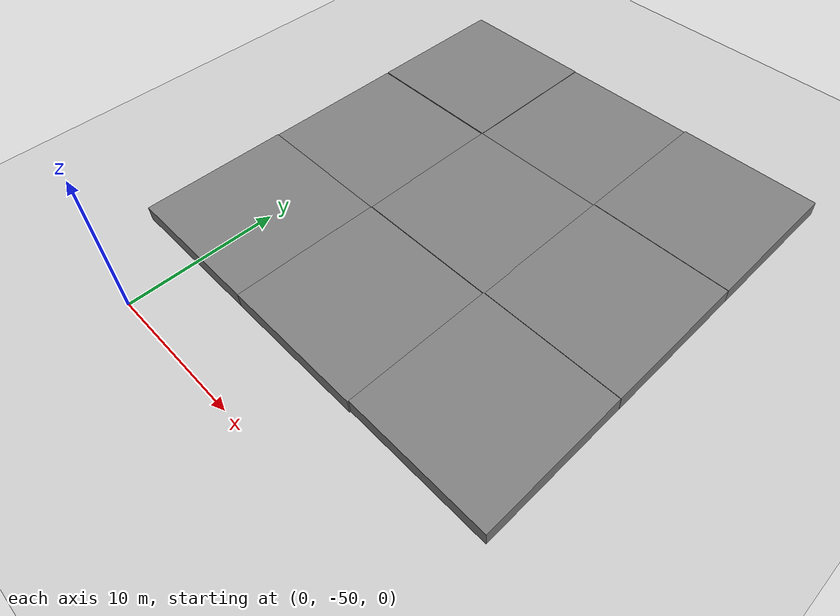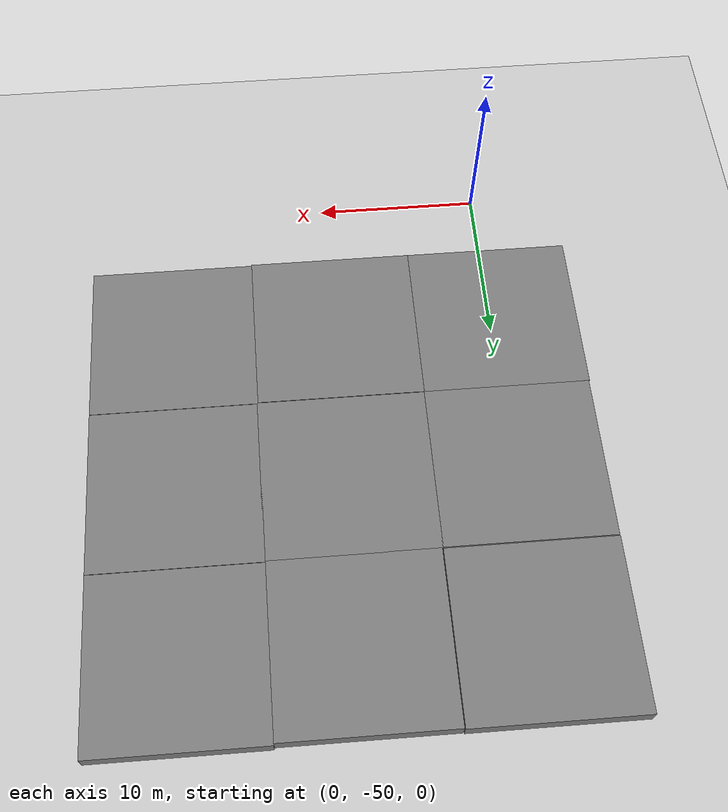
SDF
<sdf version="1.7">
 <world name="default">
  <model name="ground_plane">
   <static>1</static>
   <link name="link">
    <collision name="collision">
     <geometry><plane><normal>0 0 1</normal><size>100 100</size></plane></geometry>
     <surface>
      <contact><collide_bitmask>65535</collide_bitmask></contact>
      <friction><ode><mu>100</mu><mu2>50</mu2></ode></friction>
     </surface>
    </collision>
    <visual name="visual">
     <cast_shadows>0</cast_shadows>
     <geometry><plane><normal>0 0 1</normal><size>100 100</size></plane></geometry>
     <material>
      <script><uri>file://media/materials/scripts/gazebo.material</uri><name>Gazebo/Grey</name></script>
     </material>
    </visual>
   </link>
  </model>
  <model name="farm_clone_0">
   <link name="link">
    <inertial>
     <mass>1</mass>
     <inertia><ixx>1</ixx><ixy>0</ixy><ixz>0</ixz><iyy>1</iyy><iyz>0</iyz><izz>1</izz></inertia>
    </inertial>
    <visual name="visual_1">
     <pose>2 2.5 0 0 -0 0</pose>
     <cast_shadows>0</cast_shadows>
     <geometry><box><size>10 10 2</size></box></geometry>
     <material>
      <script>
       <uri>model://mud_box/materials/scripts</uri>
       <uri>model://mud_box/materials/textures</uri>
       <name>vrc/mud</name>
      </script>
      <shader type="pixel"><normal_map>__default__</normal_map></shader>
      <ambient>0.5 0.5 0.5 1</ambient>
      <diffuse>0.5 0.5 0.5 1</diffuse>
      <specular>0.2 0.2 0.2 1</specular>
      <emissive>0 0 0 1</emissive>
     </material>
    </visual>
    <visual name="visual_2">
     <pose>2 2.5 0 0 -0 0</pose>
     <cast_shadows>0</cast_shadows>
     <geometry><box><size>10 10 2</size></box></geometry>
     <material>
      <script>
       <uri>model://mud_box/materials/scripts</uri>
       <uri>model://mud_box/materials/textures</uri>
       <name>vrc/mud</name>
      </script>
      <shader type="pixel"><normal_map>__default__</normal_map></shader>
      <ambient>0.5 0.5 0.5 1</ambient>
      <diffuse>0.5 0.5 0.5 1</diffuse>
      <specular>0.2 0.2 0.2 1</specular>
      <emissive>0 0 0 1</emissive>
     </material>
    </visual>
    <visual name="visual_4">
     <pose>2 2.5 0 0 -0 0</pose>
     <cast_shadows>0</cast_shadows>
     <geometry><box><size>10 10 2</size></box></geometry>
     <material>
      <script>
       <uri>model://mud_box/materials/scripts</uri>
       <uri>model://mud_box/materials/textures</uri>
       <name>vrc/mud</name>
      </script>
      <shader type="pixel"><normal_map>__default__</normal_map></shader>
      <ambient>0.5 0.5 0.5 1</ambient>
      <diffuse>0.5 0.5 0.5 1</diffuse>
      <specular>0.2 0.2 0.2 1</specular>
      <emissive>0 0 0 1</emissive>
     </material>
    </visual>
    <visual name="visual_3">
     <pose>2 2.5 0 0 -0 0</pose>
     <cast_shadows>0</cast_shadows>
     <geometry><box><size>10 10 2</size></box></geometry>
     <material>
      <script>
       <uri>model://mud_box/materials/scripts</uri>
       <uri>model://mud_box/materials/textures</uri>
       <name>vrc/mud</name>
      </script>
      <shader type="pixel"><normal_map>__default__</normal_map></shader>
      <ambient>0.5 0.5 0.5 1</ambient>
      <diffuse>0.5 0.5 0.5 1</diffuse>
      <specular>0.2 0.2 0.2 1</specular>
      <emissive>0 0 0 1</emissive>
     </material>
    </visual>
    <collision name="collision">
     <laser_retro>0.3</laser_retro>
     <pose>2 2.5 0 0 -0 0</pose>
     <geometry><box><size>100 100 2</size></box></geometry>
     <surface>
      <friction>
       <ode><mu>1.2</mu><mu2>1.2</mu2><fdir1>0 0 0</fdir1><slip1>0.01</slip1><slip2>0.01</slip2></ode>
       <torsional>
        <coefficient>0.05</coefficient>
        <patch_radius>0.08</patch_radius>
        <surface_radius>0.05</surface_radius>
        <use_patch_radius>1</use_patch_radius>
        <ode><slip>0</slip></ode>
       </torsional>
      </friction>
      <bounce><restitution_coefficient>0</restitution_coefficient><threshold>1</threshold></bounce>
      <contact>
       <collide_without_contact>0</collide_without_contact>
       <collide_without_contact_bitmask>1</collide_without_contact_bitmask>
       <collide_bitmask>1</collide_bitmask>
       <ode>
        <soft_cfm>0</soft_cfm>
        <soft_erp>1</soft_erp>
        <kp>1e+07</kp>
        <kd>5000</kd>
        <max_vel>0.001</max_vel>
        <min_depth>0.0005</min_depth>
       </ode>
       <bullet>
        <split_impulse>1</split_impulse>
        <split_impulse_penetration_threshold>-0.01</split_impulse_penetration_threshold>
        <soft_cfm>0</soft_cfm>
        <soft_erp>1</soft_erp>
        <kp>1e+07</kp>
        <kd>5000</kd>
       </bullet>
      </contact>
     </surface>
    </collision>
   </link>
   <static>1</static>
   <pose>-2.22199 -22.8913 0 0 -0 0</pose>
  </model>
  <model name="farm_clone_0_clone_1_clone_1_clone_1">
   <link name="link">
    <inertial>
     <mass>1</mass>
     <inertia><ixx>1</ixx><ixy>0</ixy><ixz>0</ixz><iyy>1</iyy><iyz>0</iyz><izz>1</izz></inertia>
    </inertial>
    <visual name="visual_1">
     <pose>2 2.5 0 0 -0 0</pose>
     <cast_shadows>0</cast_shadows>
     <geometry><box><size>10 10 2</size></box></geometry>
     <material>
      <script>
       <uri>model://mud_box/materials/scripts</uri>
       <uri>model://mud_box/materials/textures</uri>
       <name>vrc/mud</name>
      </script>
      <shader type="pixel"><normal_map>__default__</normal_map></shader>
      <ambient>0.5 0.5 0.5 1</ambient>
      <diffuse>0.5 0.5 0.5 1</diffuse>
      <specular>0.2 0.2 0.2 1</specular>
      <emissive>0 0 0 1</emissive>
     </material>
    </visual>
    <visual name="visual_2">
     <pose>2 2.5 0 0 -0 0</pose>
     <cast_shadows>0</cast_shadows>
     <geometry><box><size>10 10 2</size></box></geometry>
     <material>
      <script>
       <uri>model://mud_box/materials/scripts</uri>
       <uri>model://mud_box/materials/textures</uri>
       <name>vrc/mud</name>
      </script>
      <shader type="pixel"><normal_map>__default__</normal_map></shader>
      <ambient>0.5 0.5 0.5 1</ambient>
      <diffuse>0.5 0.5 0.5 1</diffuse>
      <specular>0.2 0.2 0.2 1</specular>
      <emissive>0 0 0 1</emissive>
     </material>
    </visual>
    <visual name="visual_4">
     <pose>2 2.5 0 0 -0 0</pose>
     <cast_shadows>0</cast_shadows>
     <geometry><box><size>10 10 2</size></box></geometry>
     <material>
      <script>
       <uri>model://mud_box/materials/scripts</uri>
       <uri>model://mud_box/materials/textures</uri>
       <name>vrc/mud</name>
      </script>
      <shader type="pixel"><normal_map>__default__</normal_map></shader>
      <ambient>0.5 0.5 0.5 1</ambient>
      <diffuse>0.5 0.5 0.5 1</diffuse>
      <specular>0.2 0.2 0.2 1</specular>
      <emissive>0 0 0 1</emissive>
     </material>
    </visual>
    <visual name="visual_3">
     <pose>2 2.5 0 0 -0 0</pose>
     <cast_shadows>0</cast_shadows>
     <geometry><box><size>10 10 2</size></box></geometry>
     <material>
      <script>
       <uri>model://mud_box/materials/scripts</uri>
       <uri>model://mud_box/materials/textures</uri>
       <name>vrc/mud</name>
      </script>
      <shader type="pixel"><normal_map>__default__</normal_map></shader>
      <ambient>0.5 0.5 0.5 1</ambient>
      <diffuse>0.5 0.5 0.5 1</diffuse>
      <specular>0.2 0.2 0.2 1</specular>
      <emissive>0 0 0 1</emissive>
     </material>
    </visual>
    <collision name="collision">
     <laser_retro>0.3</laser_retro>
     <pose>2 2.5 0 0 -0 0</pose>
     <geometry><box><size>100 100 2</size></box></geometry>
     <surface>
      <friction>
       <ode><mu>1.2</mu><mu2>1.2</mu2><fdir1>0 0 0</fdir1><slip1>0.01</slip1><slip2>0.01</slip2></ode>
       <torsional>
        <coefficient>0.05</coefficient>
        <patch_radius>0.08</patch_radius>
        <surface_radius>0.05</surface_radius>
        <use_patch_radius>1</use_patch_radius>
        <ode><slip>0</slip></ode>
       </torsional>
      </friction>
      <bounce><restitution_coefficient>0</restitution_coefficient><threshold>1</threshold></bounce>
      <contact>
       <collide_without_contact>0</collide_without_contact>
       <collide_without_contact_bitmask>1</collide_without_contact_bitmask>
       <collide_bitmask>1</collide_bitmask>
       <ode>
        <soft_cfm>0</soft_cfm>
        <soft_erp>1</soft_erp>
        <kp>1e+07</kp>
        <kd>5000</kd>
        <max_vel>0.001</max_vel>
        <min_depth>0.0005</min_depth>
       </ode>
       <bullet>
        <split_impulse>1</split_impulse>
        <split_impulse_penetration_threshold>-0.01</split_impulse_penetration_threshold>
        <soft_cfm>0</soft_cfm>
        <soft_erp>1</soft_erp>
        <kp>1e+07</kp>
        <kd>5000</kd>
       </bullet>
      </contact>
     </surface>
    </collision>
   </link>
   <static>1</static>
   <pose>7.82078 -22.93 0 0 -0 0</pose>
  </model>
  <model name="farm_clone_0_clone_1_clone_1_clone_2">
   <link name="link">
    <inertial>
     <mass>1</mass>
     <inertia><ixx>1</ixx><ixy>0</ixy><ixz>0</ixz><iyy>1</iyy><iyz>0</iyz><izz>1</izz></inertia>
    </inertial>
    <visual name="visual_1">
     <pose>2 2.5 0 0 -0 0</pose>
     <cast_shadows>0</cast_shadows>
     <geometry><box><size>10 10 2</size></box></geometry>
     <material>
      <script>
       <uri>model://mud_box/materials/scripts</uri>
       <uri>model://mud_box/materials/textures</uri>
       <name>vrc/mud</name>
      </script>
      <shader type="pixel"><normal_map>__default__</normal_map></shader>
      <ambient>0.5 0.5 0.5 1</ambient>
      <diffuse>0.5 0.5 0.5 1</diffuse>
      <specular>0.2 0.2 0.2 1</specular>
      <emissive>0 0 0 1</emissive>
     </material>
    </visual>
    <visual name="visual_2">
     <pose>2 2.5 0 0 -0 0</pose>
     <cast_shadows>0</cast_shadows>
     <geometry><box><size>10 10 2</size></box></geometry>
     <material>
      <script>
       <uri>model://mud_box/materials/scripts</uri>
       <uri>model://mud_box/materials/textures</uri>
       <name>vrc/mud</name>
      </script>
      <shader type="pixel"><normal_map>__default__</normal_map></shader>
      <ambient>0.5 0.5 0.5 1</ambient>
      <diffuse>0.5 0.5 0.5 1</diffuse>
      <specular>0.2 0.2 0.2 1</specular>
      <emissive>0 0 0 1</emissive>
     </material>
    </visual>
    <visual name="visual_4">
     <pose>2 2.5 0 0 -0 0</pose>
     <cast_shadows>0</cast_shadows>
     <geometry><box><size>10 10 2</size></box></geometry>
     <material>
      <script>
       <uri>model://mud_box/materials/scripts</uri>
       <uri>model://mud_box/materials/textures</uri>
       <name>vrc/mud</name>
      </script>
      <shader type="pixel"><normal_map>__default__</normal_map></shader>
      <ambient>0.5 0.5 0.5 1</ambient>
      <diffuse>0.5 0.5 0.5 1</diffuse>
      <specular>0.2 0.2 0.2 1</specular>
      <emissive>0 0 0 1</emissive>
     </material>
    </visual>
    <visual name="visual_3">
     <pose>2 2.5 0 0 -0 0</pose>
     <cast_shadows>0</cast_shadows>
     <geometry><box><size>10 10 2</size></box></geometry>
     <material>
      <script>
       <uri>model://mud_box/materials/scripts</uri>
       <uri>model://mud_box/materials/textures</uri>
       <name>vrc/mud</name>
      </script>
      <shader type="pixel"><normal_map>__default__</normal_map></shader>
      <ambient>0.5 0.5 0.5 1</ambient>
      <diffuse>0.5 0.5 0.5 1</diffuse>
      <specular>0.2 0.2 0.2 1</specular>
      <emissive>0 0 0 1</emissive>
     </material>
    </visual>
    <collision name="collision">
     <laser_retro>0.3</laser_retro>
     <pose>2 2.5 0 0 -0 0</pose>
     <geometry><box><size>100 100 2</size></box></geometry>
     <surface>
      <friction>
       <ode><mu>1.2</mu><mu2>1.2</mu2><fdir1>0 0 0</fdir1><slip1>0.01</slip1><slip2>0.01</slip2></ode>
       <torsional>
        <coefficient>0.05</coefficient>
        <patch_radius>0.08</patch_radius>
        <surface_radius>0.05</surface_radius>
        <use_patch_radius>1</use_patch_radius>
        <ode><slip>0</slip></ode>
       </torsional>
      </friction>
      <bounce><restitution_coefficient>0</restitution_coefficient><threshold>1</threshold></bounce>
      <contact>
       <collide_without_contact>0</collide_without_contact>
       <collide_without_contact_bitmask>1</collide_without_contact_bitmask>
       <collide_bitmask>1</collide_bitmask>
       <ode>
        <soft_cfm>0</soft_cfm>
        <soft_erp>1</soft_erp>
        <kp>1e+07</kp>
        <kd>5000</kd>
        <max_vel>0.001</max_vel>
        <min_depth>0.0005</min_depth>
       </ode>
       <bullet>
        <split_impulse>1</split_impulse>
        <split_impulse_penetration_threshold>-0.01</split_impulse_penetration_threshold>
        <soft_cfm>0</soft_cfm>
        <soft_erp>1</soft_erp>
        <kp>1e+07</kp>
        <kd>5000</kd>
       </bullet>
      </contact>
     </surface>
    </collision>
   </link>
   <static>1</static>
   <pose>7.76584 -32.9025 0 0 -0 0</pose>
  </model>
  <model name="farm_clone_0_clone_1_clone_1_clone_3">
   <link name="link">
    <inertial>
     <mass>1</mass>
     <inertia><ixx>1</ixx><ixy>0</ixy><ixz>0</ixz><iyy>1</iyy><iyz>0</iyz><izz>1</izz></inertia>
    </inertial>
    <visual name="visual_1">
     <pose>2 2.5 0 0 -0 0</pose>
     <cast_shadows>0</cast_shadows>
     <geometry><box><size>10 10 2</size></box></geometry>
     <material>
      <script>
       <uri>model://mud_box/materials/scripts</uri>
       <uri>model://mud_box/materials/textures</uri>
       <name>vrc/mud</name>
      </script>
      <shader type="pixel"><normal_map>__default__</normal_map></shader>
      <ambient>0.5 0.5 0.5 1</ambient>
      <diffuse>0.5 0.5 0.5 1</diffuse>
      <specular>0.2 0.2 0.2 1</specular>
      <emissive>0 0 0 1</emissive>
     </material>
    </visual>
    <visual name="visual_2">
     <pose>2 2.5 0 0 -0 0</pose>
     <cast_shadows>0</cast_shadows>
     <geometry><box><size>10 10 2</size></box></geometry>
     <material>
      <script>
       <uri>model://mud_box/materials/scripts</uri>
       <uri>model://mud_box/materials/textures</uri>
       <name>vrc/mud</name>
      </script>
      <shader type="pixel"><normal_map>__default__</normal_map></shader>
      <ambient>0.5 0.5 0.5 1</ambient>
      <diffuse>0.5 0.5 0.5 1</diffuse>
      <specular>0.2 0.2 0.2 1</specular>
      <emissive>0 0 0 1</emissive>
     </material>
    </visual>
    <visual name="visual_4">
     <pose>2 2.5 0 0 -0 0</pose>
     <cast_shadows>0</cast_shadows>
     <geometry><box><size>10 10 2</size></box></geometry>
     <material>
      <script>
       <uri>model://mud_box/materials/scripts</uri>
       <uri>model://mud_box/materials/textures</uri>
       <name>vrc/mud</name>
      </script>
      <shader type="pixel"><normal_map>__default__</normal_map></shader>
      <ambient>0.5 0.5 0.5 1</ambient>
      <diffuse>0.5 0.5 0.5 1</diffuse>
      <specular>0.2 0.2 0.2 1</specular>
      <emissive>0 0 0 1</emissive>
     </material>
    </visual>
    <visual name="visual_3">
     <pose>2 2.5 0 0 -0 0</pose>
     <cast_shadows>0</cast_shadows>
     <geometry><box><size>10 10 2</size></box></geometry>
     <material>
      <script>
       <uri>model://mud_box/materials/scripts</uri>
       <uri>model://mud_box/materials/textures</uri>
       <name>vrc/mud</name>
      </script>
      <shader type="pixel"><normal_map>__default__</normal_map></shader>
      <ambient>0.5 0.5 0.5 1</ambient>
      <diffuse>0.5 0.5 0.5 1</diffuse>
      <specular>0.2 0.2 0.2 1</specular>
      <emissive>0 0 0 1</emissive>
     </material>
    </visual>
    <collision name="collision">
     <laser_retro>0.3</laser_retro>
     <pose>2 2.5 0 0 -0 0</pose>
     <geometry><box><size>100 100 2</size></box></geometry>
     <surface>
      <friction>
       <ode><mu>1.2</mu><mu2>1.2</mu2><fdir1>0 0 0</fdir1><slip1>0.01</slip1><slip2>0.01</slip2></ode>
       <torsional>
        <coefficient>0.05</coefficient>
        <patch_radius>0.08</patch_radius>
        <surface_radius>0.05</surface_radius>
        <use_patch_radius>1</use_patch_radius>
        <ode><slip>0</slip></ode>
       </torsional>
      </friction>
      <bounce><restitution_coefficient>0</restitution_coefficient><threshold>1</threshold></bounce>
      <contact>
       <collide_without_contact>0</collide_without_contact>
       <collide_without_contact_bitmask>1</collide_without_contact_bitmask>
       <collide_bitmask>1</collide_bitmask>
       <ode>
        <soft_cfm>0</soft_cfm>
        <soft_erp>1</soft_erp>
        <kp>1e+07</kp>
        <kd>5000</kd>
        <max_vel>0.001</max_vel>
        <min_depth>0.0005</min_depth>
       </ode>
       <bullet>
        <split_impulse>1</split_impulse>
        <split_impulse_penetration_threshold>-0.01</split_impulse_penetration_threshold>
        <soft_cfm>0</soft_cfm>
        <soft_erp>1</soft_erp>
        <kp>1e+07</kp>
        <kd>5000</kd>
       </bullet>
      </contact>
     </surface>
    </collision>
   </link>
   <static>1</static>
   <pose>-2.20283 -32.95 0 0 -0 0</pose>
  </model>
  <model name="farm_clone_0_clone_1_clone_1_clone_10">
   <link name="link">
    <inertial>
     <mass>1</mass>
     <inertia><ixx>1</ixx><ixy>0</ixy><ixz>0</ixz><iyy>1</iyy><iyz>0</iyz><izz>1</izz></inertia>
    </inertial>
    <visual name="visual_1">
     <pose>2 2.5 0 0 -0 0</pose>
     <cast_shadows>0</cast_shadows>
     <geometry><box><size>10 10 2</size></box></geometry>
     <material>
      <script>
       <uri>model://mud_box/materials/scripts</uri>
       <uri>model://mud_box/materials/textures</uri>
       <name>vrc/mud</name>
      </script>
      <shader type="pixel"><normal_map>__default__</normal_map></shader>
      <ambient>0.5 0.5 0.5 1</ambient>
      <diffuse>0.5 0.5 0.5 1</diffuse>
      <specular>0.2 0.2 0.2 1</specular>
      <emissive>0 0 0 1</emissive>
     </material>
    </visual>
    <visual name="visual_2">
     <pose>2 2.5 0 0 -0 0</pose>
     <cast_shadows>0</cast_shadows>
     <geometry><box><size>10 10 2</size></box></geometry>
     <material>
      <script>
       <uri>model://mud_box/materials/scripts</uri>
       <uri>model://mud_box/materials/textures</uri>
       <name>vrc/mud</name>
      </script>
      <shader type="pixel"><normal_map>__default__</normal_map></shader>
      <ambient>0.5 0.5 0.5 1</ambient>
      <diffuse>0.5 0.5 0.5 1</diffuse>
      <specular>0.2 0.2 0.2 1</specular>
      <emissive>0 0 0 1</emissive>
     </material>
    </visual>
    <visual name="visual_4">
     <pose>2 2.5 0 0 -0 0</pose>
     <cast_shadows>0</cast_shadows>
     <geometry><box><size>10 10 2</size></box></geometry>
     <material>
      <script>
       <uri>model://mud_box/materials/scripts</uri>
       <uri>model://mud_box/materials/textures</uri>
       <name>vrc/mud</name>
      </script>
      <shader type="pixel"><normal_map>__default__</normal_map></shader>
      <ambient>0.5 0.5 0.5 1</ambient>
      <diffuse>0.5 0.5 0.5 1</diffuse>
      <specular>0.2 0.2 0.2 1</specular>
      <emissive>0 0 0 1</emissive>
     </material>
    </visual>
    <visual name="visual_3">
     <pose>2 2.5 0 0 -0 0</pose>
     <cast_shadows>0</cast_shadows>
     <geometry><box><size>10 10 2</size></box></geometry>
     <material>
      <script>
       <uri>model://mud_box/materials/scripts</uri>
       <uri>model://mud_box/materials/textures</uri>
       <name>vrc/mud</name>
      </script>
      <shader type="pixel"><normal_map>__default__</normal_map></shader>
      <ambient>0.5 0.5 0.5 1</ambient>
      <diffuse>0.5 0.5 0.5 1</diffuse>
      <specular>0.2 0.2 0.2 1</specular>
      <emissive>0 0 0 1</emissive>
     </material>
    </visual>
    <collision name="collision">
     <laser_retro>0.3</laser_retro>
     <pose>2 2.5 0 0 -0 0</pose>
     <geometry><box><size>100 100 2</size></box></geometry>
     <surface>
      <friction>
       <ode><mu>1.2</mu><mu2>1.2</mu2><fdir1>0 0 0</fdir1><slip1>0.01</slip1><slip2>0.01</slip2></ode>
       <torsional>
        <coefficient>0.05</coefficient>
        <patch_radius>0.08</patch_radius>
        <surface_radius>0.05</surface_radius>
        <use_patch_radius>1</use_patch_radius>
        <ode><slip>0</slip></ode>
       </torsional>
      </friction>
      <bounce><restitution_coefficient>0</restitution_coefficient><threshold>1</threshold></bounce>
      <contact>
       <collide_without_contact>0</collide_without_contact>
       <collide_without_contact_bitmask>1</collide_without_contact_bitmask>
       <collide_bitmask>1</collide_bitmask>
       <ode>
        <soft_cfm>0</soft_cfm>
        <soft_erp>1</soft_erp>
        <kp>1e+07</kp>
        <kd>5000</kd>
        <max_vel>0.001</max_vel>
        <min_depth>0.0005</min_depth>
       </ode>
       <bullet>
        <split_impulse>1</split_impulse>
        <split_impulse_penetration_threshold>-0.01</split_impulse_penetration_threshold>
        <soft_cfm>0</soft_cfm>
        <soft_erp>1</soft_erp>
        <kp>1e+07</kp>
        <kd>5000</kd>
       </bullet>
      </contact>
     </surface>
    </collision>
   </link>
   <static>1</static>
   <pose>7.7145 -42.9299 0 0 -0 0</pose>
  </model>
  <model name="farm_clone_0_clone_1_clone_1_clone_11">
   <link name="link">
    <inertial>
     <mass>1</mass>
     <inertia><ixx>1</ixx><ixy>0</ixy><ixz>0</ixz><iyy>1</iyy><iyz>0</iyz><izz>1</izz></inertia>
    </inertial>
    <visual name="visual_1">
     <pose>2 2.5 0 0 -0 0</pose>
     <cast_shadows>0</cast_shadows>
     <geometry><box><size>10 10 2</size></box></geometry>
     <material>
      <script>
       <uri>model://mud_box/materials/scripts</uri>
       <uri>model://mud_box/materials/textures</uri>
       <name>vrc/mud</name>
      </script>
      <shader type="pixel"><normal_map>__default__</normal_map></shader>
      <ambient>0.5 0.5 0.5 1</ambient>
      <diffuse>0.5 0.5 0.5 1</diffuse>
      <specular>0.2 0.2 0.2 1</specular>
      <emissive>0 0 0 1</emissive>
     </material>
    </visual>
    <visual name="visual_2">
     <pose>2 2.5 0 0 -0 0</pose>
     <cast_shadows>0</cast_shadows>
     <geometry><box><size>10 10 2</size></box></geometry>
     <material>
      <script>
       <uri>model://mud_box/materials/scripts</uri>
       <uri>model://mud_box/materials/textures</uri>
       <name>vrc/mud</name>
      </script>
      <shader type="pixel"><normal_map>__default__</normal_map></shader>
      <ambient>0.5 0.5 0.5 1</ambient>
      <diffuse>0.5 0.5 0.5 1</diffuse>
      <specular>0.2 0.2 0.2 1</specular>
      <emissive>0 0 0 1</emissive>
     </material>
    </visual>
    <visual name="visual_4">
     <pose>2 2.5 0 0 -0 0</pose>
     <cast_shadows>0</cast_shadows>
     <geometry><box><size>10 10 2</size></box></geometry>
     <material>
      <script>
       <uri>model://mud_box/materials/scripts</uri>
       <uri>model://mud_box/materials/textures</uri>
       <name>vrc/mud</name>
      </script>
      <shader type="pixel"><normal_map>__default__</normal_map></shader>
      <ambient>0.5 0.5 0.5 1</ambient>
      <diffuse>0.5 0.5 0.5 1</diffuse>
      <specular>0.2 0.2 0.2 1</specular>
      <emissive>0 0 0 1</emissive>
     </material>
    </visual>
    <visual name="visual_3">
     <pose>2 2.5 0 0 -0 0</pose>
     <cast_shadows>0</cast_shadows>
     <geometry><box><size>10 10 2</size></box></geometry>
     <material>
      <script>
       <uri>model://mud_box/materials/scripts</uri>
       <uri>model://mud_box/materials/textures</uri>
       <name>vrc/mud</name>
      </script>
      <shader type="pixel"><normal_map>__default__</normal_map></shader>
      <ambient>0.5 0.5 0.5 1</ambient>
      <diffuse>0.5 0.5 0.5 1</diffuse>
      <specular>0.2 0.2 0.2 1</specular>
      <emissive>0 0 0 1</emissive>
     </material>
    </visual>
    <collision name="collision">
     <laser_retro>0.3</laser_retro>
     <pose>2 2.5 0 0 -0 0</pose>
     <geometry><box><size>100 100 2</size></box></geometry>
     <surface>
      <friction>
       <ode><mu>1.2</mu><mu2>1.2</mu2><fdir1>0 0 0</fdir1><slip1>0.01</slip1><slip2>0.01</slip2></ode>
       <torsional>
        <coefficient>0.05</coefficient>
        <patch_radius>0.08</patch_radius>
        <surface_radius>0.05</surface_radius>
        <use_patch_radius>1</use_patch_radius>
        <ode><slip>0</slip></ode>
       </torsional>
      </friction>
      <bounce><restitution_coefficient>0</restitution_coefficient><threshold>1</threshold></bounce>
      <contact>
       <collide_without_contact>0</collide_without_contact>
       <collide_without_contact_bitmask>1</collide_without_contact_bitmask>
       <collide_bitmask>1</collide_bitmask>
       <ode>
        <soft_cfm>0</soft_cfm>
        <soft_erp>1</soft_erp>
        <kp>1e+07</kp>
        <kd>5000</kd>
        <max_vel>0.001</max_vel>
        <min_depth>0.0005</min_depth>
       </ode>
       <bullet>
        <split_impulse>1</split_impulse>
        <split_impulse_penetration_threshold>-0.01</split_impulse_penetration_threshold>
        <soft_cfm>0</soft_cfm>
        <soft_erp>1</soft_erp>
        <kp>1e+07</kp>
        <kd>5000</kd>
       </bullet>
      </contact>
     </surface>
    </collision>
   </link>
   <static>1</static>
   <pose>-2.25826 -42.9266 0 0 -0 0</pose>
  </model>
  <model name="farm_clone_0_clone_1_clone_1_clone_14">
   <link name="link">
    <inertial>
     <mass>1</mass>
     <inertia><ixx>1</ixx><ixy>0</ixy><ixz>0</ixz><iyy>1</iyy><iyz>0</iyz><izz>1</izz></inertia>
    </inertial>
    <visual name="visual_1">
     <pose>2 2.5 0 0 -0 0</pose>
     <cast_shadows>0</cast_shadows>
     <geometry><box><size>10 10 2</size></box></geometry>
     <material>
      <script>
       <uri>model://mud_box/materials/scripts</uri>
       <uri>model://mud_box/materials/textures</uri>
       <name>vrc/mud</name>
      </script>
      <shader type="pixel"><normal_map>__default__</normal_map></shader>
      <ambient>0.5 0.5 0.5 1</ambient>
      <diffuse>0.5 0.5 0.5 1</diffuse>
      <specular>0.2 0.2 0.2 1</specular>
      <emissive>0 0 0 1</emissive>
     </material>
    </visual>
    <visual name="visual_2">
     <pose>2 2.5 0 0 -0 0</pose>
     <cast_shadows>0</cast_shadows>
     <geometry><box><size>10 10 2</size></box></geometry>
     <material>
      <script>
       <uri>model://mud_box/materials/scripts</uri>
       <uri>model://mud_box/materials/textures</uri>
       <name>vrc/mud</name>
      </script>
      <shader type="pixel"><normal_map>__default__</normal_map></shader>
      <ambient>0.5 0.5 0.5 1</ambient>
      <diffuse>0.5 0.5 0.5 1</diffuse>
      <specular>0.2 0.2 0.2 1</specular>
      <emissive>0 0 0 1</emissive>
     </material>
    </visual>
    <visual name="visual_4">
     <pose>2 2.5 0 0 -0 0</pose>
     <cast_shadows>0</cast_shadows>
     <geometry><box><size>10 10 2</size></box></geometry>
     <material>
      <script>
       <uri>model://mud_box/materials/scripts</uri>
       <uri>model://mud_box/materials/textures</uri>
       <name>vrc/mud</name>
      </script>
      <shader type="pixel"><normal_map>__default__</normal_map></shader>
      <ambient>0.5 0.5 0.5 1</ambient>
      <diffuse>0.5 0.5 0.5 1</diffuse>
      <specular>0.2 0.2 0.2 1</specular>
      <emissive>0 0 0 1</emissive>
     </material>
    </visual>
    <visual name="visual_3">
     <pose>2 2.5 0 0 -0 0</pose>
     <cast_shadows>0</cast_shadows>
     <geometry><box><size>10 10 2</size></box></geometry>
     <material>
      <script>
       <uri>model://mud_box/materials/scripts</uri>
       <uri>model://mud_box/materials/textures</uri>
       <name>vrc/mud</name>
      </script>
      <shader type="pixel"><normal_map>__default__</normal_map></shader>
      <ambient>0.5 0.5 0.5 1</ambient>
      <diffuse>0.5 0.5 0.5 1</diffuse>
      <specular>0.2 0.2 0.2 1</specular>
      <emissive>0 0 0 1</emissive>
     </material>
    </visual>
    <collision name="collision">
     <laser_retro>0.3</laser_retro>
     <pose>2 2.5 0 0 -0 0</pose>
     <geometry><box><size>100 100 2</size></box></geometry>
     <surface>
      <friction>
       <ode><mu>1.2</mu><mu2>1.2</mu2><fdir1>0 0 0</fdir1><slip1>0.01</slip1><slip2>0.01</slip2></ode>
       <torsional>
        <coefficient>0.05</coefficient>
        <patch_radius>0.08</patch_radius>
        <surface_radius>0.05</surface_radius>
        <use_patch_radius>1</use_patch_radius>
        <ode><slip>0</slip></ode>
       </torsional>
      </friction>
      <bounce><restitution_coefficient>0</restitution_coefficient><threshold>1</threshold></bounce>
      <contact>
       <collide_without_contact>0</collide_without_contact>
       <collide_without_contact_bitmask>1</collide_without_contact_bitmask>
       <collide_bitmask>1</collide_bitmask>
       <ode>
        <soft_cfm>0</soft_cfm>
        <soft_erp>1</soft_erp>
        <kp>1e+07</kp>
        <kd>5000</kd>
        <max_vel>0.001</max_vel>
        <min_depth>0.0005</min_depth>
       </ode>
       <bullet>
        <split_impulse>1</split_impulse>
        <split_impulse_penetration_threshold>-0.01</split_impulse_penetration_threshold>
        <soft_cfm>0</soft_cfm>
        <soft_erp>1</soft_erp>
        <kp>1e+07</kp>
        <kd>5000</kd>
       </bullet>
      </contact>
     </surface>
    </collision>
   </link>
   <static>1</static>
   <pose>17.7086 -42.8588 0 0 -0 0</pose>
  </model>
  <model name="farm_clone_0_clone_1_clone_1_clone_15">
   <link name="link">
    <inertial>
     <mass>1</mass>
     <inertia><ixx>1</ixx><ixy>0</ixy><ixz>0</ixz><iyy>1</iyy><iyz>0</iyz><izz>1</izz></inertia>
    </inertial>
    <visual name="visual_1">
     <pose>2 2.5 0 0 -0 0</pose>
     <cast_shadows>0</cast_shadows>
     <geometry><box><size>10 10 2</size></box></geometry>
     <material>
      <script>
       <uri>model://mud_box/materials/scripts</uri>
       <uri>model://mud_box/materials/textures</uri>
       <name>vrc/mud</name>
      </script>
      <shader type="pixel"><normal_map>__default__</normal_map></shader>
      <ambient>0.5 0.5 0.5 1</ambient>
      <diffuse>0.5 0.5 0.5 1</diffuse>
      <specular>0.2 0.2 0.2 1</specular>
      <emissive>0 0 0 1</emissive>
     </material>
    </visual>
    <visual name="visual_2">
     <pose>2 2.5 0 0 -0 0</pose>
     <cast_shadows>0</cast_shadows>
     <geometry><box><size>10 10 2</size></box></geometry>
     <material>
      <script>
       <uri>model://mud_box/materials/scripts</uri>
       <uri>model://mud_box/materials/textures</uri>
       <name>vrc/mud</name>
      </script>
      <shader type="pixel"><normal_map>__default__</normal_map></shader>
      <ambient>0.5 0.5 0.5 1</ambient>
      <diffuse>0.5 0.5 0.5 1</diffuse>
      <specular>0.2 0.2 0.2 1</specular>
      <emissive>0 0 0 1</emissive>
     </material>
    </visual>
    <visual name="visual_4">
     <pose>2 2.5 0 0 -0 0</pose>
     <cast_shadows>0</cast_shadows>
     <geometry><box><size>10 10 2</size></box></geometry>
     <material>
      <script>
       <uri>model://mud_box/materials/scripts</uri>
       <uri>model://mud_box/materials/textures</uri>
       <name>vrc/mud</name>
      </script>
      <shader type="pixel"><normal_map>__default__</normal_map></shader>
      <ambient>0.5 0.5 0.5 1</ambient>
      <diffuse>0.5 0.5 0.5 1</diffuse>
      <specular>0.2 0.2 0.2 1</specular>
      <emissive>0 0 0 1</emissive>
     </material>
    </visual>
    <visual name="visual_3">
     <pose>2 2.5 0 0 -0 0</pose>
     <cast_shadows>0</cast_shadows>
     <geometry><box><size>10 10 2</size></box></geometry>
     <material>
      <script>
       <uri>model://mud_box/materials/scripts</uri>
       <uri>model://mud_box/materials/textures</uri>
       <name>vrc/mud</name>
      </script>
      <shader type="pixel"><normal_map>__default__</normal_map></shader>
      <ambient>0.5 0.5 0.5 1</ambient>
      <diffuse>0.5 0.5 0.5 1</diffuse>
      <specular>0.2 0.2 0.2 1</specular>
      <emissive>0 0 0 1</emissive>
     </material>
    </visual>
    <collision name="collision">
     <laser_retro>0.3</laser_retro>
     <pose>2 2.5 0 0 -0 0</pose>
     <geometry><box><size>100 100 2</size></box></geometry>
     <surface>
      <friction>
       <ode><mu>1.2</mu><mu2>1.2</mu2><fdir1>0 0 0</fdir1><slip1>0.01</slip1><slip2>0.01</slip2></ode>
       <torsional>
        <coefficient>0.05</coefficient>
        <patch_radius>0.08</patch_radius>
        <surface_radius>0.05</surface_radius>
        <use_patch_radius>1</use_patch_radius>
        <ode><slip>0</slip></ode>
       </torsional>
      </friction>
      <bounce><restitution_coefficient>0</restitution_coefficient><threshold>1</threshold></bounce>
      <contact>
       <collide_without_contact>0</collide_without_contact>
       <collide_without_contact_bitmask>1</collide_without_contact_bitmask>
       <collide_bitmask>1</collide_bitmask>
       <ode>
        <soft_cfm>0</soft_cfm>
        <soft_erp>1</soft_erp>
        <kp>1e+07</kp>
        <kd>5000</kd>
        <max_vel>0.001</max_vel>
        <min_depth>0.0005</min_depth>
       </ode>
       <bullet>
        <split_impulse>1</split_impulse>
        <split_impulse_penetration_threshold>-0.01</split_impulse_penetration_threshold>
        <soft_cfm>0</soft_cfm>
        <soft_erp>1</soft_erp>
        <kp>1e+07</kp>
        <kd>5000</kd>
       </bullet>
      </contact>
     </surface>
    </collision>
   </link>
   <static>1</static>
   <pose>17.7121 -32.841 0 0 -0 0</pose>
  </model>
  <model name="farm_clone_0_clone_1_clone_1_clone_16">
   <link name="link">
    <inertial>
     <mass>1</mass>
     <inertia><ixx>1</ixx><ixy>0</ixy><ixz>0</ixz><iyy>1</iyy><iyz>0</iyz><izz>1</izz></inertia>
    </inertial>
    <visual name="visual_1">
     <pose>2 2.5 0 0 -0 0</pose>
     <cast_shadows>0</cast_shadows>
     <geometry><box><size>10 10 2</size></box></geometry>
     <material>
      <script>
       <uri>model://mud_box/materials/scripts</uri>
       <uri>model://mud_box/materials/textures</uri>
       <name>vrc/mud</name>
      </script>
      <shader type="pixel"><normal_map>__default__</normal_map></shader>
      <ambient>0.5 0.5 0.5 1</ambient>
      <diffuse>0.5 0.5 0.5 1</diffuse>
      <specular>0.2 0.2 0.2 1</specular>
      <emissive>0 0 0 1</emissive>
     </material>
    </visual>
    <visual name="visual_2">
     <pose>2 2.5 0 0 -0 0</pose>
     <cast_shadows>0</cast_shadows>
     <geometry><box><size>10 10 2</size></box></geometry>
     <material>
      <script>
       <uri>model://mud_box/materials/scripts</uri>
       <uri>model://mud_box/materials/textures</uri>
       <name>vrc/mud</name>
      </script>
      <shader type="pixel"><normal_map>__default__</normal_map></shader>
      <ambient>0.5 0.5 0.5 1</ambient>
      <diffuse>0.5 0.5 0.5 1</diffuse>
      <specular>0.2 0.2 0.2 1</specular>
      <emissive>0 0 0 1</emissive>
     </material>
    </visual>
    <visual name="visual_4">
     <pose>2 2.5 0 0 -0 0</pose>
     <cast_shadows>0</cast_shadows>
     <geometry><box><size>10 10 2</size></box></geometry>
     <material>
      <script>
       <uri>model://mud_box/materials/scripts</uri>
       <uri>model://mud_box/materials/textures</uri>
       <name>vrc/mud</name>
      </script>
      <shader type="pixel"><normal_map>__default__</normal_map></shader>
      <ambient>0.5 0.5 0.5 1</ambient>
      <diffuse>0.5 0.5 0.5 1</diffuse>
      <specular>0.2 0.2 0.2 1</specular>
      <emissive>0 0 0 1</emissive>
     </material>
    </visual>
    <visual name="visual_3">
     <pose>2 2.5 0 0 -0 0</pose>
     <cast_shadows>0</cast_shadows>
     <geometry><box><size>10 10 2</size></box></geometry>
     <material>
      <script>
       <uri>model://mud_box/materials/scripts</uri>
       <uri>model://mud_box/materials/textures</uri>
       <name>vrc/mud</name>
      </script>
      <shader type="pixel"><normal_map>__default__</normal_map></shader>
      <ambient>0.5 0.5 0.5 1</ambient>
      <diffuse>0.5 0.5 0.5 1</diffuse>
      <specular>0.2 0.2 0.2 1</specular>
      <emissive>0 0 0 1</emissive>
     </material>
    </visual>
    <collision name="collision">
     <laser_retro>0.3</laser_retro>
     <pose>2 2.5 0 0 -0 0</pose>
     <geometry><box><size>100 100 2</size></box></geometry>
     <surface>
      <friction>
       <ode><mu>1.2</mu><mu2>1.2</mu2><fdir1>0 0 0</fdir1><slip1>0.01</slip1><slip2>0.01</slip2></ode>
       <torsional>
        <coefficient>0.05</coefficient>
        <patch_radius>0.08</patch_radius>
        <surface_radius>0.05</surface_radius>
        <use_patch_radius>1</use_patch_radius>
        <ode><slip>0</slip></ode>
       </torsional>
      </friction>
      <bounce><restitution_coefficient>0</restitution_coefficient><threshold>1</threshold></bounce>
      <contact>
       <collide_without_contact>0</collide_without_contact>
       <collide_without_contact_bitmask>1</collide_without_contact_bitmask>
       <collide_bitmask>1</collide_bitmask>
       <ode>
        <soft_cfm>0</soft_cfm>
        <soft_erp>1</soft_erp>
        <kp>1e+07</kp>
        <kd>5000</kd>
        <max_vel>0.001</max_vel>
        <min_depth>0.0005</min_depth>
       </ode>
       <bullet>
        <split_impulse>1</split_impulse>
        <split_impulse_penetration_threshold>-0.01</split_impulse_penetration_threshold>
        <soft_cfm>0</soft_cfm>
        <soft_erp>1</soft_erp>
        <kp>1e+07</kp>
        <kd>5000</kd>
       </bullet>
      </contact>
     </surface>
    </collision>
   </link>
   <static>1</static>
   <pose>17.7121 -22.8209 0 0 -0 0</pose>
  </model>
 </world>
</sdf>
